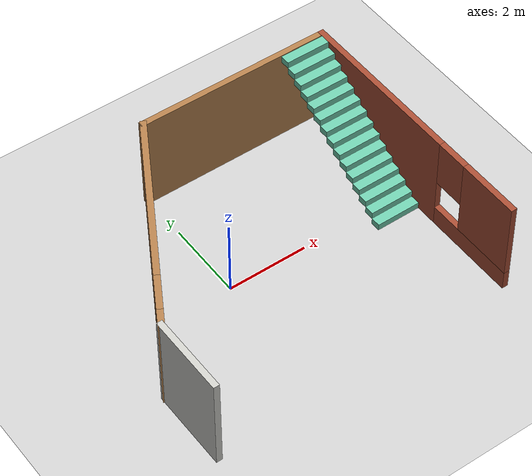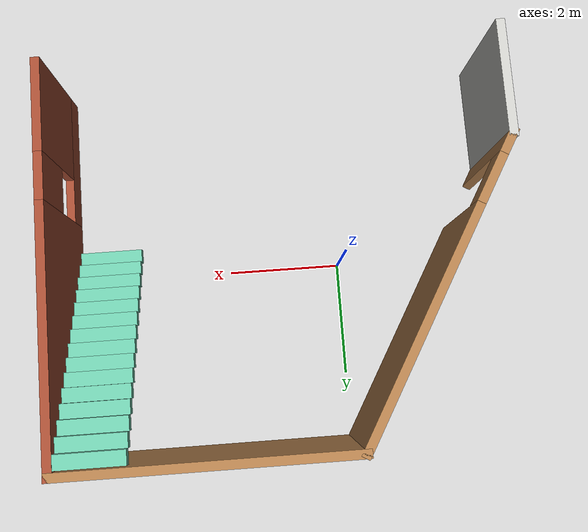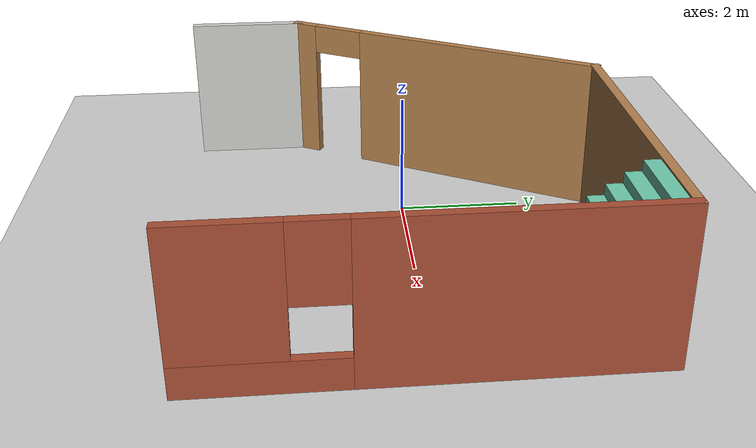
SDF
<sdf version="1.7">
 <world name="default">
  <light name="sun" type="directional">
   <pose>0 0 10 0 -0 0</pose>
   <diffuse>0.8 0.8 0.8 1</diffuse>
   <specular>0.2 0.2 0.2 1</specular>
   <attenuation>
    <range>1000</range>
    <constant>0.9</constant>
    <linear>0.01</linear>
    <quadratic>0.001</quadratic>
   </attenuation>
   <direction>-0.5 0.1 -0.9</direction>
   <spot><inner_angle>0</inner_angle><outer_angle>0</outer_angle><falloff>0</falloff></spot>
  </light>
  <model name="ground_plane">
   <static>1</static>
   <link name="link">
    <collision name="collision">
     <geometry><plane><normal>0 0 1</normal><size>100 100</size></plane></geometry>
     <surface>
      <contact><collide_bitmask>65535</collide_bitmask></contact>
      <friction><ode><mu>100</mu><mu2>50</mu2></ode></friction>
     </surface>
    </collision>
    <visual name="visual">
     <cast_shadows>0</cast_shadows>
     <geometry><plane><normal>0 0 1</normal><size>100 100</size></plane></geometry>
     <material>
      <script><uri>file://media/materials/scripts/gazebo.material</uri><name>Gazebo/Grey</name></script>
     </material>
    </visual>
   </link>
  </model>
  <gravity>0 0 -9.8</gravity>
  <magnetic_field>6e-06 2.3e-05 -4.2e-05</magnetic_field>
  <atmosphere type="adiabatic"/>
  <physics type="ode">
   <max_step_size>0.001</max_step_size>
   <real_time_factor>1</real_time_factor>
   <real_time_update_rate>1000</real_time_update_rate>
  </physics>
  <scene><ambient>0.4 0.4 0.4 1</ambient><background>0.7 0.7 0.7 1</background><shadows>1</shadows></scene>
  <audio><device>default</device></audio>
  <spherical_coordinates>
   <surface_model>EARTH_WGS84</surface_model>
   <latitude_deg>0</latitude_deg>
   <longitude_deg>0</longitude_deg>
   <elevation>0</elevation>
   <heading_deg>0</heading_deg>
  </spherical_coordinates>
  <model name="my_building">
   <pose>1.01127 -0.136403 0 0 -0 0</pose>
   <link name="Stairs_1">
    <visual name="Stairs_1_Visual_0">
     <pose>3.19596 -0.29775 0.083333 0 -0 -3.14159</pose>
     <geometry><box><size>1.133 0.243973 0.166667</size></box></geometry>
     <material>
      <script><uri>file://media/materials/scripts/gazebo.material</uri><name>Gazebo/Grey</name></script>
      <ambient>0.435294 0.796078 0.67451 1</ambient>
     </material>
     <meta><layer>0</layer></meta>
    </visual>
    <collision name="Stairs_1_Collision_0">
     <geometry><box><size>1.133 0.243973 0.166667</size></box></geometry>
     <pose>3.19596 -0.29775 0.083333 0 -0 -3.14159</pose>
    </collision>
    <visual name="Stairs_1_Visual_1">
     <pose>3.19596 -0.053776 0.25 0 -0 -3.14159</pose>
     <geometry><box><size>1.133 0.243973 0.166667</size></box></geometry>
     <material>
      <script><uri>file://media/materials/scripts/gazebo.material</uri><name>Gazebo/Grey</name></script>
      <ambient>0.435294 0.796078 0.67451 1</ambient>
     </material>
     <meta><layer>0</layer></meta>
    </visual>
    <collision name="Stairs_1_Collision_1">
     <geometry><box><size>1.133 0.243973 0.166667</size></box></geometry>
     <pose>3.19596 -0.053776 0.25 0 -0 -3.14159</pose>
    </collision>
    <visual name="Stairs_1_Visual_2">
     <pose>3.19596 0.190197 0.416667 0 -0 -3.14159</pose>
     <geometry><box><size>1.133 0.243973 0.166667</size></box></geometry>
     <material>
      <script><uri>file://media/materials/scripts/gazebo.material</uri><name>Gazebo/Grey</name></script>
      <ambient>0.435294 0.796078 0.67451 1</ambient>
     </material>
     <meta><layer>0</layer></meta>
    </visual>
    <collision name="Stairs_1_Collision_2">
     <geometry><box><size>1.133 0.243973 0.166667</size></box></geometry>
     <pose>3.19596 0.190197 0.416667 0 -0 -3.14159</pose>
    </collision>
    <visual name="Stairs_1_Visual_3">
     <pose>3.19596 0.43417 0.583333 0 -0 -3.14159</pose>
     <geometry><box><size>1.133 0.243973 0.166667</size></box></geometry>
     <material>
      <script><uri>file://media/materials/scripts/gazebo.material</uri><name>Gazebo/Grey</name></script>
      <ambient>0.435294 0.796078 0.67451 1</ambient>
     </material>
     <meta><layer>0</layer></meta>
    </visual>
    <collision name="Stairs_1_Collision_3">
     <geometry><box><size>1.133 0.243973 0.166667</size></box></geometry>
     <pose>3.19596 0.43417 0.583333 0 -0 -3.14159</pose>
    </collision>
    <visual name="Stairs_1_Visual_4">
     <pose>3.19596 0.678144 0.75 0 -0 -3.14159</pose>
     <geometry><box><size>1.133 0.243973 0.166667</size></box></geometry>
     <material>
      <script><uri>file://media/materials/scripts/gazebo.material</uri><name>Gazebo/Grey</name></script>
      <ambient>0.435294 0.796078 0.67451 1</ambient>
     </material>
     <meta><layer>0</layer></meta>
    </visual>
    <collision name="Stairs_1_Collision_4">
     <geometry><box><size>1.133 0.243973 0.166667</size></box></geometry>
     <pose>3.19596 0.678144 0.75 0 -0 -3.14159</pose>
    </collision>
    <visual name="Stairs_1_Visual_5">
     <pose>3.19596 0.922117 0.916667 0 -0 -3.14159</pose>
     <geometry><box><size>1.133 0.243973 0.166667</size></box></geometry>
     <material>
      <script><uri>file://media/materials/scripts/gazebo.material</uri><name>Gazebo/Grey</name></script>
      <ambient>0.435294 0.796078 0.67451 1</ambient>
     </material>
     <meta><layer>0</layer></meta>
    </visual>
    <collision name="Stairs_1_Collision_5">
     <geometry><box><size>1.133 0.243973 0.166667</size></box></geometry>
     <pose>3.19596 0.922117 0.916667 0 -0 -3.14159</pose>
    </collision>
    <visual name="Stairs_1_Visual_6">
     <pose>3.19596 1.16609 1.08333 0 -0 -3.14159</pose>
     <geometry><box><size>1.133 0.243973 0.166667</size></box></geometry>
     <material>
      <script><uri>file://media/materials/scripts/gazebo.material</uri><name>Gazebo/Grey</name></script>
      <ambient>0.435294 0.796078 0.67451 1</ambient>
     </material>
     <meta><layer>0</layer></meta>
    </visual>
    <collision name="Stairs_1_Collision_6">
     <geometry><box><size>1.133 0.243973 0.166667</size></box></geometry>
     <pose>3.19596 1.16609 1.08333 0 -0 -3.14159</pose>
    </collision>
    <visual name="Stairs_1_Visual_7">
     <pose>3.19596 1.41006 1.25 0 -0 -3.14159</pose>
     <geometry><box><size>1.133 0.243973 0.166667</size></box></geometry>
     <material>
      <script><uri>file://media/materials/scripts/gazebo.material</uri><name>Gazebo/Grey</name></script>
      <ambient>0.435294 0.796078 0.67451 1</ambient>
     </material>
     <meta><layer>0</layer></meta>
    </visual>
    <collision name="Stairs_1_Collision_7">
     <geometry><box><size>1.133 0.243973 0.166667</size></box></geometry>
     <pose>3.19596 1.41006 1.25 0 -0 -3.14159</pose>
    </collision>
    <visual name="Stairs_1_Visual_8">
     <pose>3.19596 1.65404 1.41667 0 -0 -3.14159</pose>
     <geometry><box><size>1.133 0.243973 0.166667</size></box></geometry>
     <material>
      <script><uri>file://media/materials/scripts/gazebo.material</uri><name>Gazebo/Grey</name></script>
      <ambient>0.435294 0.796078 0.67451 1</ambient>
     </material>
     <meta><layer>0</layer></meta>
    </visual>
    <collision name="Stairs_1_Collision_8">
     <geometry><box><size>1.133 0.243973 0.166667</size></box></geometry>
     <pose>3.19596 1.65404 1.41667 0 -0 -3.14159</pose>
    </collision>
    <visual name="Stairs_1_Visual_9">
     <pose>3.19596 1.89801 1.58333 0 -0 -3.14159</pose>
     <geometry><box><size>1.133 0.243973 0.166667</size></box></geometry>
     <material>
      <script><uri>file://media/materials/scripts/gazebo.material</uri><name>Gazebo/Grey</name></script>
      <ambient>0.435294 0.796078 0.67451 1</ambient>
     </material>
     <meta><layer>0</layer></meta>
    </visual>
    <collision name="Stairs_1_Collision_9">
     <geometry><box><size>1.133 0.243973 0.166667</size></box></geometry>
     <pose>3.19596 1.89801 1.58333 0 -0 -3.14159</pose>
    </collision>
    <visual name="Stairs_1_Visual_10">
     <pose>3.19596 2.14198 1.75 0 -0 -3.14159</pose>
     <geometry><box><size>1.133 0.243973 0.166667</size></box></geometry>
     <material>
      <script><uri>file://media/materials/scripts/gazebo.material</uri><name>Gazebo/Grey</name></script>
      <ambient>0.435294 0.796078 0.67451 1</ambient>
     </material>
     <meta><layer>0</layer></meta>
    </visual>
    <collision name="Stairs_1_Collision_10">
     <geometry><box><size>1.133 0.243973 0.166667</size></box></geometry>
     <pose>3.19596 2.14198 1.75 0 -0 -3.14159</pose>
    </collision>
    <visual name="Stairs_1_Visual_11">
     <pose>3.19596 2.38596 1.91667 0 -0 -3.14159</pose>
     <geometry><box><size>1.133 0.243973 0.166667</size></box></geometry>
     <material>
      <script><uri>file://media/materials/scripts/gazebo.material</uri><name>Gazebo/Grey</name></script>
      <ambient>0.435294 0.796078 0.67451 1</ambient>
     </material>
     <meta><layer>0</layer></meta>
    </visual>
    <collision name="Stairs_1_Collision_11">
     <geometry><box><size>1.133 0.243973 0.166667</size></box></geometry>
     <pose>3.19596 2.38596 1.91667 0 -0 -3.14159</pose>
    </collision>
    <visual name="Stairs_1_Visual_12">
     <pose>3.19596 2.62993 2.08333 0 -0 -3.14159</pose>
     <geometry><box><size>1.133 0.243973 0.166667</size></box></geometry>
     <material>
      <script><uri>file://media/materials/scripts/gazebo.material</uri><name>Gazebo/Grey</name></script>
      <ambient>0.435294 0.796078 0.67451 1</ambient>
     </material>
     <meta><layer>0</layer></meta>
    </visual>
    <collision name="Stairs_1_Collision_12">
     <geometry><box><size>1.133 0.243973 0.166667</size></box></geometry>
     <pose>3.19596 2.62993 2.08333 0 -0 -3.14159</pose>
    </collision>
    <visual name="Stairs_1_Visual_13">
     <pose>3.19596 2.87391 2.25 0 -0 -3.14159</pose>
     <geometry><box><size>1.133 0.243973 0.166667</size></box></geometry>
     <material>
      <script><uri>file://media/materials/scripts/gazebo.material</uri><name>Gazebo/Grey</name></script>
      <ambient>0.435294 0.796078 0.67451 1</ambient>
     </material>
     <meta><layer>0</layer></meta>
    </visual>
    <collision name="Stairs_1_Collision_13">
     <geometry><box><size>1.133 0.243973 0.166667</size></box></geometry>
     <pose>3.19596 2.87391 2.25 0 -0 -3.14159</pose>
    </collision>
    <visual name="Stairs_1_Visual_14">
     <pose>3.19596 3.11788 2.41667 0 -0 -3.14159</pose>
     <geometry><box><size>1.133 0.243973 0.166667</size></box></geometry>
     <material>
      <script><uri>file://media/materials/scripts/gazebo.material</uri><name>Gazebo/Grey</name></script>
      <ambient>0.435294 0.796078 0.67451 1</ambient>
     </material>
     <meta><layer>0</layer></meta>
    </visual>
    <collision name="Stairs_1_Collision_14">
     <geometry><box><size>1.133 0.243973 0.166667</size></box></geometry>
     <pose>3.19596 3.11788 2.41667 0 -0 -3.14159</pose>
    </collision>
   </link>
   <link name="Wall_0">
    <collision name="Wall_0_Collision">
     <geometry><box><size>2 0.15 2.5</size></box></geometry>
     <pose>0 0 1.25 0 -0 0</pose>
    </collision>
    <visual name="Wall_0_Visual">
     <pose>0 0 1.25 0 -0 0</pose>
     <geometry><box><size>2 0.15 2.5</size></box></geometry>
     <material>
      <script><uri>file://media/materials/scripts/gazebo.material</uri><name>Gazebo/CeilingTiled</name></script>
      <ambient>1 1 1 1</ambient>
     </material>
     <meta><layer>0</layer></meta>
    </visual>
    <pose>-3.81127 -2.4386 0 0 -0 1.5708</pose>
   </link>
   <link name="Wall_1">
    <pose>-2.41127 0.911274 0 0 -0 1.0472</pose>
    <visual name="Wall_1_Visual_0">
     <pose>-2.64352 0 1.25 0 -0 0</pose>
     <geometry><box><size>0.462954 0.15 2.5</size></box></geometry>
     <material>
      <script><uri>file://media/materials/scripts/gazebo.material</uri><name>Gazebo/Wood</name></script>
      <ambient>1 0.764706 0.305882 1</ambient>
     </material>
     <meta><layer>0</layer></meta>
    </visual>
    <collision name="Wall_1_Collision_0">
     <geometry><box><size>0.462954 0.15 2.5</size></box></geometry>
     <pose>-2.64352 0 1.25 0 -0 0</pose>
    </collision>
    <visual name="Wall_1_Visual_1">
     <pose>0.681477 0 1.25 0 -0 0</pose>
     <geometry><box><size>4.38705 0.15 2.5</size></box></geometry>
     <material>
      <script><uri>file://media/materials/scripts/gazebo.material</uri><name>Gazebo/Wood</name></script>
      <ambient>1 0.764706 0.305882 1</ambient>
     </material>
     <meta><layer>0</layer></meta>
    </visual>
    <collision name="Wall_1_Collision_1">
     <geometry><box><size>4.38705 0.15 2.5</size></box></geometry>
     <pose>0.681477 0 1.25 0 -0 0</pose>
    </collision>
    <visual name="Wall_1_Visual_2">
     <pose>-1.96205 0 2.25 0 -0 0</pose>
     <geometry><box><size>0.9 0.15 0.5</size></box></geometry>
     <material>
      <script><uri>file://media/materials/scripts/gazebo.material</uri><name>Gazebo/Wood</name></script>
      <ambient>1 0.764706 0.305882 1</ambient>
     </material>
     <meta><layer>0</layer></meta>
    </visual>
    <collision name="Wall_1_Collision_2">
     <geometry><box><size>0.9 0.15 0.5</size></box></geometry>
     <pose>-1.96205 0 2.25 0 -0 0</pose>
    </collision>
   </link>
   <link name="Wall_2">
    <collision name="Wall_2_Collision">
     <geometry><box><size>5 0.15 2.5</size></box></geometry>
     <pose>0 0 1.25 0 -0 0</pose>
    </collision>
    <visual name="Wall_2_Visual">
     <pose>0 0 1.25 0 -0 0</pose>
     <geometry><box><size>5 0.15 2.5</size></box></geometry>
     <material>
      <script><uri>file://media/materials/scripts/gazebo.material</uri><name>Gazebo/Wood</name></script>
      <ambient>1 0.764706 0.305882 1</ambient>
     </material>
     <meta><layer>0</layer></meta>
    </visual>
    <pose>1.41373 3.33615 0 0 -0 0</pose>
   </link>
   <link name="Wall_3">
    <pose>3.83873 0.036145 0 0 -0 -1.5708</pose>
    <visual name="Wall_3_Visual_0">
     <pose>-1.19125 0 1.25 0 -0 0</pose>
     <geometry><box><size>4.3675 0.15 2.5</size></box></geometry>
     <material>
      <script><uri>file://media/materials/scripts/gazebo.material</uri><name>Gazebo/Bricks</name></script>
      <ambient>1 0.764706 0.305882 1</ambient>
     </material>
     <meta><layer>0</layer></meta>
    </visual>
    <collision name="Wall_3_Collision_0">
     <geometry><box><size>4.3675 0.15 2.5</size></box></geometry>
     <pose>-1.19125 0 1.25 0 -0 0</pose>
    </collision>
    <visual name="Wall_3_Visual_1">
     <pose>2.18375 0 0.25 0 -0 0</pose>
     <geometry><box><size>2.3825 0.15 0.5</size></box></geometry>
     <material>
      <script><uri>file://media/materials/scripts/gazebo.material</uri><name>Gazebo/Bricks</name></script>
      <ambient>1 0.764706 0.305882 1</ambient>
     </material>
     <meta><layer>0</layer></meta>
    </visual>
    <collision name="Wall_3_Collision_1">
     <geometry><box><size>2.3825 0.15 0.5</size></box></geometry>
     <pose>2.18375 0 0.25 0 -0 0</pose>
    </collision>
    <visual name="Wall_3_Visual_2">
     <pose>2.58375 0 1.5 0 -0 0</pose>
     <geometry><box><size>1.5825 0.15 2</size></box></geometry>
     <material>
      <script><uri>file://media/materials/scripts/gazebo.material</uri><name>Gazebo/Bricks</name></script>
      <ambient>1 0.764706 0.305882 1</ambient>
     </material>
     <meta><layer>0</layer></meta>
    </visual>
    <collision name="Wall_3_Collision_2">
     <geometry><box><size>1.5825 0.15 2</size></box></geometry>
     <pose>2.58375 0 1.5 0 -0 0</pose>
    </collision>
    <visual name="Wall_3_Visual_3">
     <pose>1.3925 0 1.9 0 -0 0</pose>
     <geometry><box><size>0.8 0.15 1.2</size></box></geometry>
     <material>
      <script><uri>file://media/materials/scripts/gazebo.material</uri><name>Gazebo/Bricks</name></script>
      <ambient>1 0.764706 0.305882 1</ambient>
     </material>
     <meta><layer>0</layer></meta>
    </visual>
    <collision name="Wall_3_Collision_3">
     <geometry><box><size>0.8 0.15 1.2</size></box></geometry>
     <pose>1.3925 0 1.9 0 -0 0</pose>
    </collision>
   </link>
   <static>1</static>
  </model>
 </world>
</sdf>
